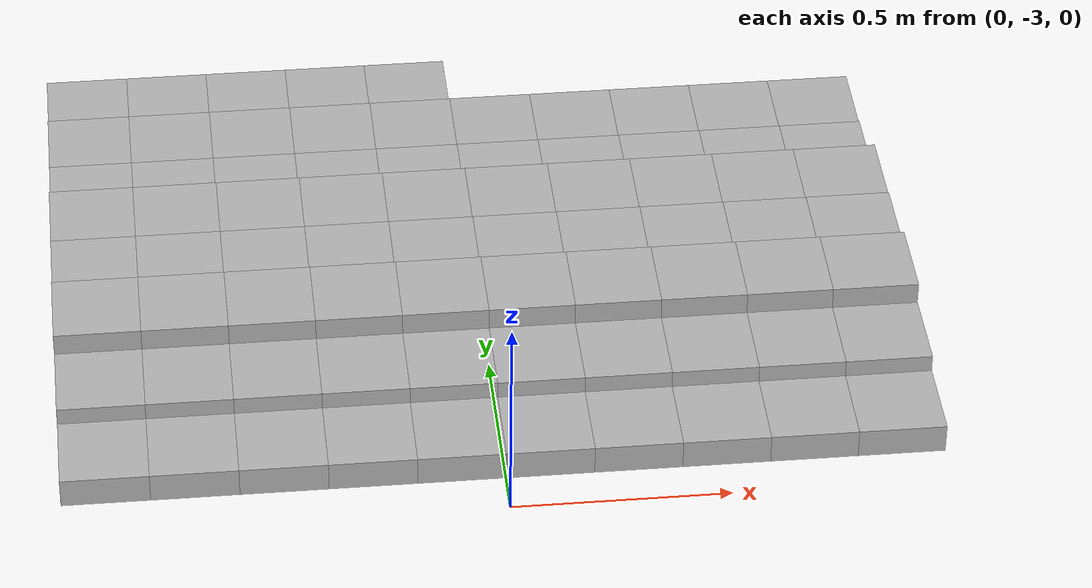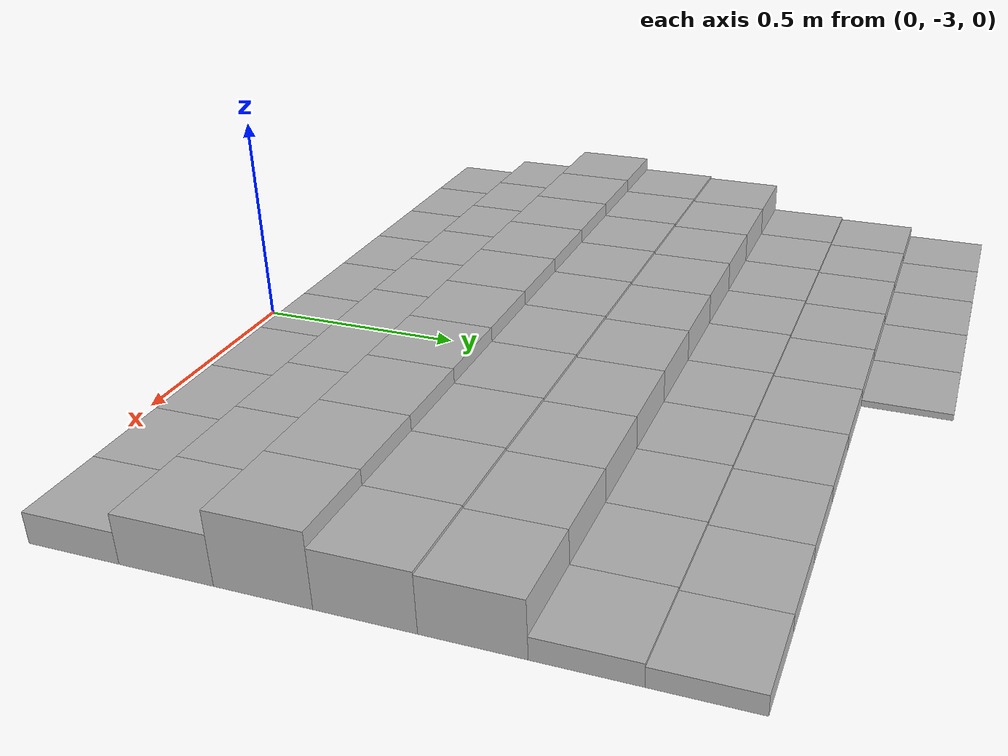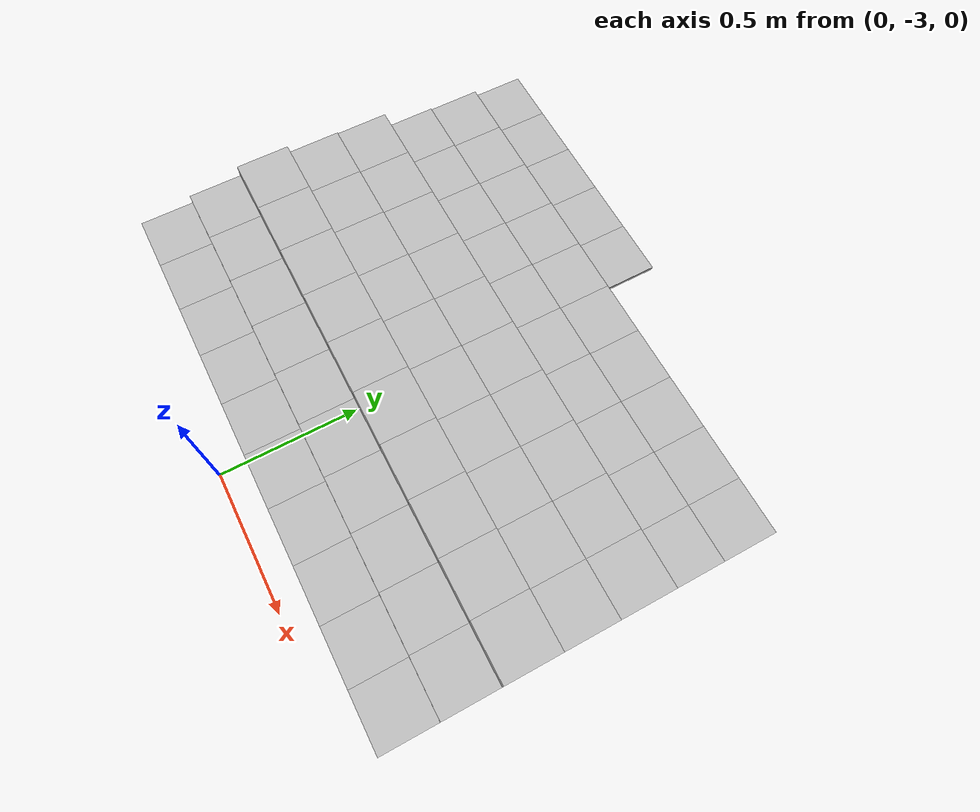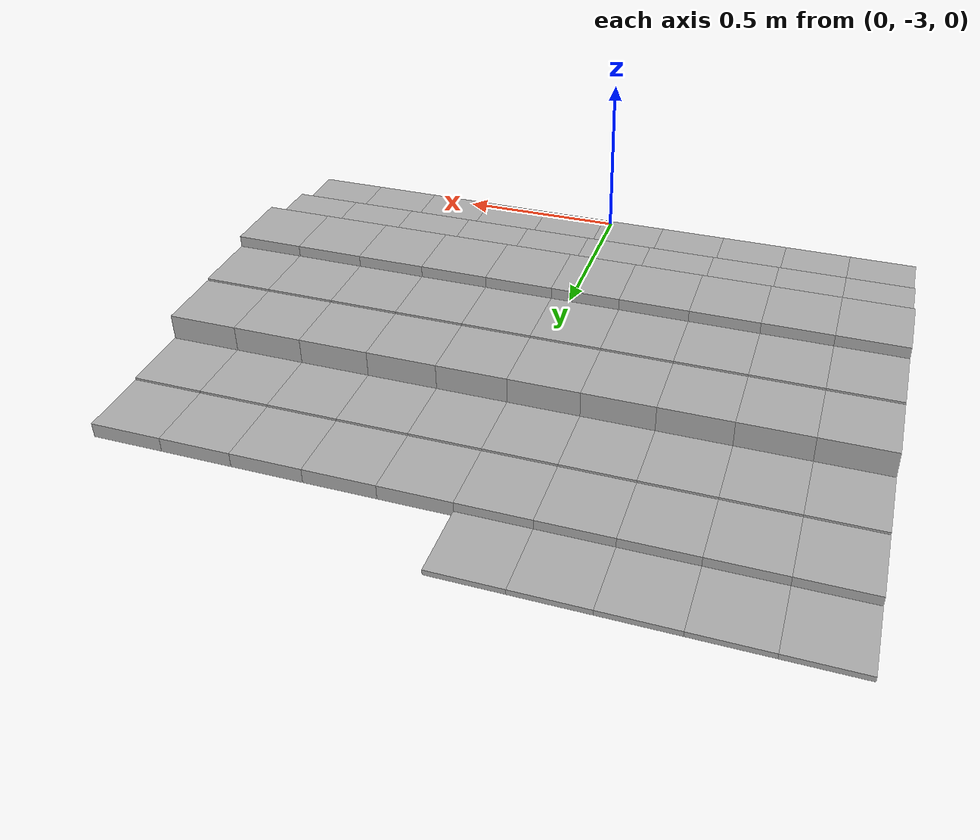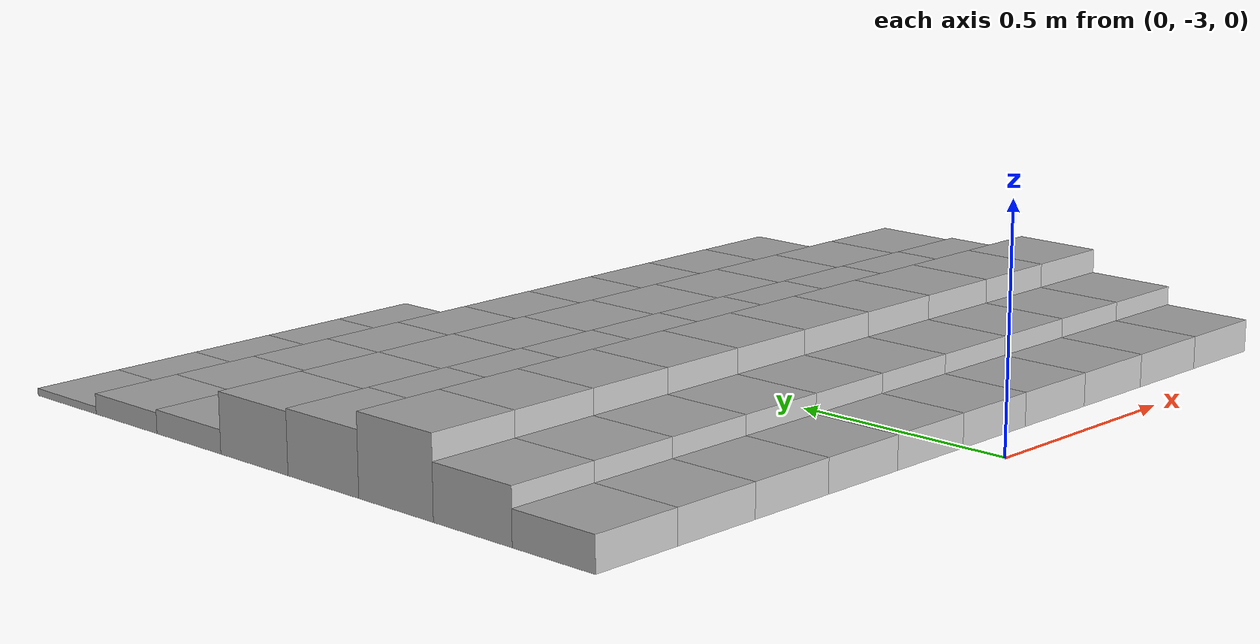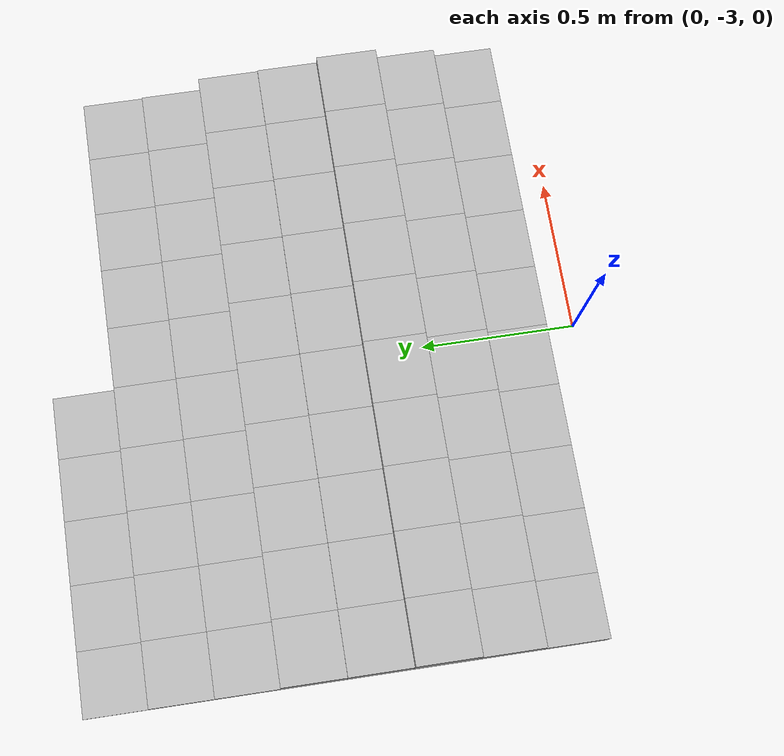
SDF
<sdf version="1.6">
 <model name="Terrain">
  <static>true</static>
  <link name="box_7_0">
   <pose>-0.9 -1.4 0.0075755849345 0 0 0</pose>
   <inertial>
    <mass>1.0</mass>
    <inertia><ixx>0.0</ixx><ixy>0.0</ixy><ixz>0.0</ixz><iyy>0.0</iyy><iyz>0.0</iyz><izz>0.0</izz></inertia>
   </inertial>
   <collision name="collision"><geometry><box><size>0.2 0.2 0.015151169869</size></box></geometry></collision>
   <visual name="visual"><geometry><box><size>0.2 0.2 0.015151169869</size></box></geometry></visual>
  </link>
  <link name="box_7_1">
   <pose>-0.7 -1.4 0.0075755849345 0 0 0</pose>
   <inertial>
    <mass>1.0</mass>
    <inertia><ixx>0.0</ixx><ixy>0.0</ixy><ixz>0.0</ixz><iyy>0.0</iyy><iyz>0.0</iyz><izz>0.0</izz></inertia>
   </inertial>
   <collision name="collision"><geometry><box><size>0.2 0.2 0.015151169869</size></box></geometry></collision>
   <visual name="visual"><geometry><box><size>0.2 0.2 0.015151169869</size></box></geometry></visual>
  </link>
  <link name="box_7_2">
   <pose>-0.5 -1.4 0.0075755849345 0 0 0</pose>
   <inertial>
    <mass>1.0</mass>
    <inertia><ixx>0.0</ixx><ixy>0.0</ixy><ixz>0.0</ixz><iyy>0.0</iyy><iyz>0.0</iyz><izz>0.0</izz></inertia>
   </inertial>
   <collision name="collision"><geometry><box><size>0.2 0.2 0.015151169869</size></box></geometry></collision>
   <visual name="visual"><geometry><box><size>0.2 0.2 0.015151169869</size></box></geometry></visual>
  </link>
  <link name="box_7_3">
   <pose>-0.3 -1.4 0.0075755849345 0 0 0</pose>
   <inertial>
    <mass>1.0</mass>
    <inertia><ixx>0.0</ixx><ixy>0.0</ixy><ixz>0.0</ixz><iyy>0.0</iyy><iyz>0.0</iyz><izz>0.0</izz></inertia>
   </inertial>
   <collision name="collision"><geometry><box><size>0.2 0.2 0.015151169869</size></box></geometry></collision>
   <visual name="visual"><geometry><box><size>0.2 0.2 0.015151169869</size></box></geometry></visual>
  </link>
  <link name="box_7_4">
   <pose>-0.1 -1.4 0.0075755849345 0 0 0</pose>
   <inertial>
    <mass>1.0</mass>
    <inertia><ixx>0.0</ixx><ixy>0.0</ixy><ixz>0.0</ixz><iyy>0.0</iyy><iyz>0.0</iyz><izz>0.0</izz></inertia>
   </inertial>
   <collision name="collision"><geometry><box><size>0.2 0.2 0.015151169869</size></box></geometry></collision>
   <visual name="visual"><geometry><box><size>0.2 0.2 0.015151169869</size></box></geometry></visual>
  </link>
  <link name="box_8_0">
   <pose>-0.9 -1.6 0.0211864863341 0 0 0</pose>
   <inertial>
    <mass>1.0</mass>
    <inertia><ixx>0.0</ixx><ixy>0.0</ixy><ixz>0.0</ixz><iyy>0.0</iyy><iyz>0.0</iyz><izz>0.0</izz></inertia>
   </inertial>
   <collision name="collision"><geometry><box><size>0.2 0.2 0.0423729726682</size></box></geometry></collision>
   <visual name="visual"><geometry><box><size>0.2 0.2 0.0423729726682</size></box></geometry></visual>
  </link>
  <link name="box_8_1">
   <pose>-0.7 -1.6 0.0211864863341 0 0 0</pose>
   <inertial>
    <mass>1.0</mass>
    <inertia><ixx>0.0</ixx><ixy>0.0</ixy><ixz>0.0</ixz><iyy>0.0</iyy><iyz>0.0</iyz><izz>0.0</izz></inertia>
   </inertial>
   <collision name="collision"><geometry><box><size>0.2 0.2 0.0423729726682</size></box></geometry></collision>
   <visual name="visual"><geometry><box><size>0.2 0.2 0.0423729726682</size></box></geometry></visual>
  </link>
  <link name="box_8_2">
   <pose>-0.5 -1.6 0.0211864863341 0 0 0</pose>
   <inertial>
    <mass>1.0</mass>
    <inertia><ixx>0.0</ixx><ixy>0.0</ixy><ixz>0.0</ixz><iyy>0.0</iyy><iyz>0.0</iyz><izz>0.0</izz></inertia>
   </inertial>
   <collision name="collision"><geometry><box><size>0.2 0.2 0.0423729726682</size></box></geometry></collision>
   <visual name="visual"><geometry><box><size>0.2 0.2 0.0423729726682</size></box></geometry></visual>
  </link>
  <link name="box_8_3">
   <pose>-0.3 -1.6 0.0211864863341 0 0 0</pose>
   <inertial>
    <mass>1.0</mass>
    <inertia><ixx>0.0</ixx><ixy>0.0</ixy><ixz>0.0</ixz><iyy>0.0</iyy><iyz>0.0</iyz><izz>0.0</izz></inertia>
   </inertial>
   <collision name="collision"><geometry><box><size>0.2 0.2 0.0423729726682</size></box></geometry></collision>
   <visual name="visual"><geometry><box><size>0.2 0.2 0.0423729726682</size></box></geometry></visual>
  </link>
  <link name="box_8_4">
   <pose>-0.1 -1.6 0.0211864863341 0 0 0</pose>
   <inertial>
    <mass>1.0</mass>
    <inertia><ixx>0.0</ixx><ixy>0.0</ixy><ixz>0.0</ixz><iyy>0.0</iyy><iyz>0.0</iyz><izz>0.0</izz></inertia>
   </inertial>
   <collision name="collision"><geometry><box><size>0.2 0.2 0.0423729726682</size></box></geometry></collision>
   <visual name="visual"><geometry><box><size>0.2 0.2 0.0423729726682</size></box></geometry></visual>
  </link>
  <link name="box_8_5">
   <pose>0.1 -1.6 0.0211864863341 0 0 0</pose>
   <inertial>
    <mass>1.0</mass>
    <inertia><ixx>0.0</ixx><ixy>0.0</ixy><ixz>0.0</ixz><iyy>0.0</iyy><iyz>0.0</iyz><izz>0.0</izz></inertia>
   </inertial>
   <collision name="collision"><geometry><box><size>0.2 0.2 0.0423729726682</size></box></geometry></collision>
   <visual name="visual"><geometry><box><size>0.2 0.2 0.0423729726682</size></box></geometry></visual>
  </link>
  <link name="box_8_6">
   <pose>0.3 -1.6 0.0211864863341 0 0 0</pose>
   <inertial>
    <mass>1.0</mass>
    <inertia><ixx>0.0</ixx><ixy>0.0</ixy><ixz>0.0</ixz><iyy>0.0</iyy><iyz>0.0</iyz><izz>0.0</izz></inertia>
   </inertial>
   <collision name="collision"><geometry><box><size>0.2 0.2 0.0423729726682</size></box></geometry></collision>
   <visual name="visual"><geometry><box><size>0.2 0.2 0.0423729726682</size></box></geometry></visual>
  </link>
  <link name="box_8_7">
   <pose>0.5 -1.6 0.0211864863341 0 0 0</pose>
   <inertial>
    <mass>1.0</mass>
    <inertia><ixx>0.0</ixx><ixy>0.0</ixy><ixz>0.0</ixz><iyy>0.0</iyy><iyz>0.0</iyz><izz>0.0</izz></inertia>
   </inertial>
   <collision name="collision"><geometry><box><size>0.2 0.2 0.0423729726682</size></box></geometry></collision>
   <visual name="visual"><geometry><box><size>0.2 0.2 0.0423729726682</size></box></geometry></visual>
  </link>
  <link name="box_8_8">
   <pose>0.7 -1.6 0.0211864863341 0 0 0</pose>
   <inertial>
    <mass>1.0</mass>
    <inertia><ixx>0.0</ixx><ixy>0.0</ixy><ixz>0.0</ixz><iyy>0.0</iyy><iyz>0.0</iyz><izz>0.0</izz></inertia>
   </inertial>
   <collision name="collision"><geometry><box><size>0.2 0.2 0.0423729726682</size></box></geometry></collision>
   <visual name="visual"><geometry><box><size>0.2 0.2 0.0423729726682</size></box></geometry></visual>
  </link>
  <link name="box_8_9">
   <pose>0.9 -1.6 0.0211864863341 0 0 0</pose>
   <inertial>
    <mass>1.0</mass>
    <inertia><ixx>0.0</ixx><ixy>0.0</ixy><ixz>0.0</ixz><iyy>0.0</iyy><iyz>0.0</iyz><izz>0.0</izz></inertia>
   </inertial>
   <collision name="collision"><geometry><box><size>0.2 0.2 0.0423729726682</size></box></geometry></collision>
   <visual name="visual"><geometry><box><size>0.2 0.2 0.0423729726682</size></box></geometry></visual>
  </link>
  <link name="box_9_0">
   <pose>-0.9 -1.8 0.0242864443625 0 0 0</pose>
   <inertial>
    <mass>1.0</mass>
    <inertia><ixx>0.0</ixx><ixy>0.0</ixy><ixz>0.0</ixz><iyy>0.0</iyy><iyz>0.0</iyz><izz>0.0</izz></inertia>
   </inertial>
   <collision name="collision"><geometry><box><size>0.2 0.2 0.048572888725</size></box></geometry></collision>
   <visual name="visual"><geometry><box><size>0.2 0.2 0.048572888725</size></box></geometry></visual>
  </link>
  <link name="box_9_1">
   <pose>-0.7 -1.8 0.0242864443625 0 0 0</pose>
   <inertial>
    <mass>1.0</mass>
    <inertia><ixx>0.0</ixx><ixy>0.0</ixy><ixz>0.0</ixz><iyy>0.0</iyy><iyz>0.0</iyz><izz>0.0</izz></inertia>
   </inertial>
   <collision name="collision"><geometry><box><size>0.2 0.2 0.048572888725</size></box></geometry></collision>
   <visual name="visual"><geometry><box><size>0.2 0.2 0.048572888725</size></box></geometry></visual>
  </link>
  <link name="box_9_2">
   <pose>-0.5 -1.8 0.0242864443625 0 0 0</pose>
   <inertial>
    <mass>1.0</mass>
    <inertia><ixx>0.0</ixx><ixy>0.0</ixy><ixz>0.0</ixz><iyy>0.0</iyy><iyz>0.0</iyz><izz>0.0</izz></inertia>
   </inertial>
   <collision name="collision"><geometry><box><size>0.2 0.2 0.048572888725</size></box></geometry></collision>
   <visual name="visual"><geometry><box><size>0.2 0.2 0.048572888725</size></box></geometry></visual>
  </link>
  <link name="box_9_3">
   <pose>-0.3 -1.8 0.0242864443625 0 0 0</pose>
   <inertial>
    <mass>1.0</mass>
    <inertia><ixx>0.0</ixx><ixy>0.0</ixy><ixz>0.0</ixz><iyy>0.0</iyy><iyz>0.0</iyz><izz>0.0</izz></inertia>
   </inertial>
   <collision name="collision"><geometry><box><size>0.2 0.2 0.048572888725</size></box></geometry></collision>
   <visual name="visual"><geometry><box><size>0.2 0.2 0.048572888725</size></box></geometry></visual>
  </link>
  <link name="box_9_4">
   <pose>-0.1 -1.8 0.0242864443625 0 0 0</pose>
   <inertial>
    <mass>1.0</mass>
    <inertia><ixx>0.0</ixx><ixy>0.0</ixy><ixz>0.0</ixz><iyy>0.0</iyy><iyz>0.0</iyz><izz>0.0</izz></inertia>
   </inertial>
   <collision name="collision"><geometry><box><size>0.2 0.2 0.048572888725</size></box></geometry></collision>
   <visual name="visual"><geometry><box><size>0.2 0.2 0.048572888725</size></box></geometry></visual>
  </link>
  <link name="box_9_5">
   <pose>0.1 -1.8 0.0242864443625 0 0 0</pose>
   <inertial>
    <mass>1.0</mass>
    <inertia><ixx>0.0</ixx><ixy>0.0</ixy><ixz>0.0</ixz><iyy>0.0</iyy><iyz>0.0</iyz><izz>0.0</izz></inertia>
   </inertial>
   <collision name="collision"><geometry><box><size>0.2 0.2 0.048572888725</size></box></geometry></collision>
   <visual name="visual"><geometry><box><size>0.2 0.2 0.048572888725</size></box></geometry></visual>
  </link>
  <link name="box_9_6">
   <pose>0.3 -1.8 0.0242864443625 0 0 0</pose>
   <inertial>
    <mass>1.0</mass>
    <inertia><ixx>0.0</ixx><ixy>0.0</ixy><ixz>0.0</ixz><iyy>0.0</iyy><iyz>0.0</iyz><izz>0.0</izz></inertia>
   </inertial>
   <collision name="collision"><geometry><box><size>0.2 0.2 0.048572888725</size></box></geometry></collision>
   <visual name="visual"><geometry><box><size>0.2 0.2 0.048572888725</size></box></geometry></visual>
  </link>
  <link name="box_9_7">
   <pose>0.5 -1.8 0.0242864443625 0 0 0</pose>
   <inertial>
    <mass>1.0</mass>
    <inertia><ixx>0.0</ixx><ixy>0.0</ixy><ixz>0.0</ixz><iyy>0.0</iyy><iyz>0.0</iyz><izz>0.0</izz></inertia>
   </inertial>
   <collision name="collision"><geometry><box><size>0.2 0.2 0.048572888725</size></box></geometry></collision>
   <visual name="visual"><geometry><box><size>0.2 0.2 0.048572888725</size></box></geometry></visual>
  </link>
  <link name="box_9_8">
   <pose>0.7 -1.8 0.0242864443625 0 0 0</pose>
   <inertial>
    <mass>1.0</mass>
    <inertia><ixx>0.0</ixx><ixy>0.0</ixy><ixz>0.0</ixz><iyy>0.0</iyy><iyz>0.0</iyz><izz>0.0</izz></inertia>
   </inertial>
   <collision name="collision"><geometry><box><size>0.2 0.2 0.048572888725</size></box></geometry></collision>
   <visual name="visual"><geometry><box><size>0.2 0.2 0.048572888725</size></box></geometry></visual>
  </link>
  <link name="box_9_9">
   <pose>0.9 -1.8 0.0242864443625 0 0 0</pose>
   <inertial>
    <mass>1.0</mass>
    <inertia><ixx>0.0</ixx><ixy>0.0</ixy><ixz>0.0</ixz><iyy>0.0</iyy><iyz>0.0</iyz><izz>0.0</izz></inertia>
   </inertial>
   <collision name="collision"><geometry><box><size>0.2 0.2 0.048572888725</size></box></geometry></collision>
   <visual name="visual"><geometry><box><size>0.2 0.2 0.048572888725</size></box></geometry></visual>
  </link>
  <link name="box_10_0">
   <pose>-0.9 -2.0 0.0619349079104 0 0 0</pose>
   <inertial>
    <mass>1.0</mass>
    <inertia><ixx>0.0</ixx><ixy>0.0</ixy><ixz>0.0</ixz><iyy>0.0</iyy><iyz>0.0</iyz><izz>0.0</izz></inertia>
   </inertial>
   <collision name="collision"><geometry><box><size>0.2 0.2 0.123869815821</size></box></geometry></collision>
   <visual name="visual"><geometry><box><size>0.2 0.2 0.123869815821</size></box></geometry></visual>
  </link>
  <link name="box_10_1">
   <pose>-0.7 -2.0 0.0619349079104 0 0 0</pose>
   <inertial>
    <mass>1.0</mass>
    <inertia><ixx>0.0</ixx><ixy>0.0</ixy><ixz>0.0</ixz><iyy>0.0</iyy><iyz>0.0</iyz><izz>0.0</izz></inertia>
   </inertial>
   <collision name="collision"><geometry><box><size>0.2 0.2 0.123869815821</size></box></geometry></collision>
   <visual name="visual"><geometry><box><size>0.2 0.2 0.123869815821</size></box></geometry></visual>
  </link>
  <link name="box_10_2">
   <pose>-0.5 -2.0 0.0619349079104 0 0 0</pose>
   <inertial>
    <mass>1.0</mass>
    <inertia><ixx>0.0</ixx><ixy>0.0</ixy><ixz>0.0</ixz><iyy>0.0</iyy><iyz>0.0</iyz><izz>0.0</izz></inertia>
   </inertial>
   <collision name="collision"><geometry><box><size>0.2 0.2 0.123869815821</size></box></geometry></collision>
   <visual name="visual"><geometry><box><size>0.2 0.2 0.123869815821</size></box></geometry></visual>
  </link>
  <link name="box_10_3">
   <pose>-0.3 -2.0 0.0619349079104 0 0 0</pose>
   <inertial>
    <mass>1.0</mass>
    <inertia><ixx>0.0</ixx><ixy>0.0</ixy><ixz>0.0</ixz><iyy>0.0</iyy><iyz>0.0</iyz><izz>0.0</izz></inertia>
   </inertial>
   <collision name="collision"><geometry><box><size>0.2 0.2 0.123869815821</size></box></geometry></collision>
   <visual name="visual"><geometry><box><size>0.2 0.2 0.123869815821</size></box></geometry></visual>
  </link>
  <link name="box_10_4">
   <pose>-0.1 -2.0 0.0619349079104 0 0 0</pose>
   <inertial>
    <mass>1.0</mass>
    <inertia><ixx>0.0</ixx><ixy>0.0</ixy><ixz>0.0</ixz><iyy>0.0</iyy><iyz>0.0</iyz><izz>0.0</izz></inertia>
   </inertial>
   <collision name="collision"><geometry><box><size>0.2 0.2 0.123869815821</size></box></geometry></collision>
   <visual name="visual"><geometry><box><size>0.2 0.2 0.123869815821</size></box></geometry></visual>
  </link>
  <link name="box_10_5">
   <pose>0.1 -2.0 0.0619349079104 0 0 0</pose>
   <inertial>
    <mass>1.0</mass>
    <inertia><ixx>0.0</ixx><ixy>0.0</ixy><ixz>0.0</ixz><iyy>0.0</iyy><iyz>0.0</iyz><izz>0.0</izz></inertia>
   </inertial>
   <collision name="collision"><geometry><box><size>0.2 0.2 0.123869815821</size></box></geometry></collision>
   <visual name="visual"><geometry><box><size>0.2 0.2 0.123869815821</size></box></geometry></visual>
  </link>
  <link name="box_10_6">
   <pose>0.3 -2.0 0.0619349079104 0 0 0</pose>
   <inertial>
    <mass>1.0</mass>
    <inertia><ixx>0.0</ixx><ixy>0.0</ixy><ixz>0.0</ixz><iyy>0.0</iyy><iyz>0.0</iyz><izz>0.0</izz></inertia>
   </inertial>
   <collision name="collision"><geometry><box><size>0.2 0.2 0.123869815821</size></box></geometry></collision>
   <visual name="visual"><geometry><box><size>0.2 0.2 0.123869815821</size></box></geometry></visual>
  </link>
  <link name="box_10_7">
   <pose>0.5 -2.0 0.0619349079104 0 0 0</pose>
   <inertial>
    <mass>1.0</mass>
    <inertia><ixx>0.0</ixx><ixy>0.0</ixy><ixz>0.0</ixz><iyy>0.0</iyy><iyz>0.0</iyz><izz>0.0</izz></inertia>
   </inertial>
   <collision name="collision"><geometry><box><size>0.2 0.2 0.123869815821</size></box></geometry></collision>
   <visual name="visual"><geometry><box><size>0.2 0.2 0.123869815821</size></box></geometry></visual>
  </link>
  <link name="box_10_8">
   <pose>0.7 -2.0 0.0619349079104 0 0 0</pose>
   <inertial>
    <mass>1.0</mass>
    <inertia><ixx>0.0</ixx><ixy>0.0</ixy><ixz>0.0</ixz><iyy>0.0</iyy><iyz>0.0</iyz><izz>0.0</izz></inertia>
   </inertial>
   <collision name="collision"><geometry><box><size>0.2 0.2 0.123869815821</size></box></geometry></collision>
   <visual name="visual"><geometry><box><size>0.2 0.2 0.123869815821</size></box></geometry></visual>
  </link>
  <link name="box_10_9">
   <pose>0.9 -2.0 0.0619349079104 0 0 0</pose>
   <inertial>
    <mass>1.0</mass>
    <inertia><ixx>0.0</ixx><ixy>0.0</ixy><ixz>0.0</ixz><iyy>0.0</iyy><iyz>0.0</iyz><izz>0.0</izz></inertia>
   </inertial>
   <collision name="collision"><geometry><box><size>0.2 0.2 0.123869815821</size></box></geometry></collision>
   <visual name="visual"><geometry><box><size>0.2 0.2 0.123869815821</size></box></geometry></visual>
  </link>
  <link name="box_11_0">
   <pose>-0.9 -2.2 0.0648785991805 0 0 0</pose>
   <inertial>
    <mass>1.0</mass>
    <inertia><ixx>0.0</ixx><ixy>0.0</ixy><ixz>0.0</ixz><iyy>0.0</iyy><iyz>0.0</iyz><izz>0.0</izz></inertia>
   </inertial>
   <collision name="collision"><geometry><box><size>0.2 0.2 0.129757198361</size></box></geometry></collision>
   <visual name="visual"><geometry><box><size>0.2 0.2 0.129757198361</size></box></geometry></visual>
  </link>
  <link name="box_11_1">
   <pose>-0.7 -2.2 0.0648785991805 0 0 0</pose>
   <inertial>
    <mass>1.0</mass>
    <inertia><ixx>0.0</ixx><ixy>0.0</ixy><ixz>0.0</ixz><iyy>0.0</iyy><iyz>0.0</iyz><izz>0.0</izz></inertia>
   </inertial>
   <collision name="collision"><geometry><box><size>0.2 0.2 0.129757198361</size></box></geometry></collision>
   <visual name="visual"><geometry><box><size>0.2 0.2 0.129757198361</size></box></geometry></visual>
  </link>
  <link name="box_11_2">
   <pose>-0.5 -2.2 0.0648785991805 0 0 0</pose>
   <inertial>
    <mass>1.0</mass>
    <inertia><ixx>0.0</ixx><ixy>0.0</ixy><ixz>0.0</ixz><iyy>0.0</iyy><iyz>0.0</iyz><izz>0.0</izz></inertia>
   </inertial>
   <collision name="collision"><geometry><box><size>0.2 0.2 0.129757198361</size></box></geometry></collision>
   <visual name="visual"><geometry><box><size>0.2 0.2 0.129757198361</size></box></geometry></visual>
  </link>
  <link name="box_11_3">
   <pose>-0.3 -2.2 0.0648785991805 0 0 0</pose>
   <inertial>
    <mass>1.0</mass>
    <inertia><ixx>0.0</ixx><ixy>0.0</ixy><ixz>0.0</ixz><iyy>0.0</iyy><iyz>0.0</iyz><izz>0.0</izz></inertia>
   </inertial>
   <collision name="collision"><geometry><box><size>0.2 0.2 0.129757198361</size></box></geometry></collision>
   <visual name="visual"><geometry><box><size>0.2 0.2 0.129757198361</size></box></geometry></visual>
  </link>
  <link name="box_11_4">
   <pose>-0.1 -2.2 0.0648785991805 0 0 0</pose>
   <inertial>
    <mass>1.0</mass>
    <inertia><ixx>0.0</ixx><ixy>0.0</ixy><ixz>0.0</ixz><iyy>0.0</iyy><iyz>0.0</iyz><izz>0.0</izz></inertia>
   </inertial>
   <collision name="collision"><geometry><box><size>0.2 0.2 0.129757198361</size></box></geometry></collision>
   <visual name="visual"><geometry><box><size>0.2 0.2 0.129757198361</size></box></geometry></visual>
  </link>
  <link name="box_11_5">
   <pose>0.1 -2.2 0.0648785991805 0 0 0</pose>
   <inertial>
    <mass>1.0</mass>
    <inertia><ixx>0.0</ixx><ixy>0.0</ixy><ixz>0.0</ixz><iyy>0.0</iyy><iyz>0.0</iyz><izz>0.0</izz></inertia>
   </inertial>
   <collision name="collision"><geometry><box><size>0.2 0.2 0.129757198361</size></box></geometry></collision>
   <visual name="visual"><geometry><box><size>0.2 0.2 0.129757198361</size></box></geometry></visual>
  </link>
  <link name="box_11_6">
   <pose>0.3 -2.2 0.0648785991805 0 0 0</pose>
   <inertial>
    <mass>1.0</mass>
    <inertia><ixx>0.0</ixx><ixy>0.0</ixy><ixz>0.0</ixz><iyy>0.0</iyy><iyz>0.0</iyz><izz>0.0</izz></inertia>
   </inertial>
   <collision name="collision"><geometry><box><size>0.2 0.2 0.129757198361</size></box></geometry></collision>
   <visual name="visual"><geometry><box><size>0.2 0.2 0.129757198361</size></box></geometry></visual>
  </link>
  <link name="box_11_7">
   <pose>0.5 -2.2 0.0648785991805 0 0 0</pose>
   <inertial>
    <mass>1.0</mass>
    <inertia><ixx>0.0</ixx><ixy>0.0</ixy><ixz>0.0</ixz><iyy>0.0</iyy><iyz>0.0</iyz><izz>0.0</izz></inertia>
   </inertial>
   <collision name="collision"><geometry><box><size>0.2 0.2 0.129757198361</size></box></geometry></collision>
   <visual name="visual"><geometry><box><size>0.2 0.2 0.129757198361</size></box></geometry></visual>
  </link>
  <link name="box_11_8">
   <pose>0.7 -2.2 0.0648785991805 0 0 0</pose>
   <inertial>
    <mass>1.0</mass>
    <inertia><ixx>0.0</ixx><ixy>0.0</ixy><ixz>0.0</ixz><iyy>0.0</iyy><iyz>0.0</iyz><izz>0.0</izz></inertia>
   </inertial>
   <collision name="collision"><geometry><box><size>0.2 0.2 0.129757198361</size></box></geometry></collision>
   <visual name="visual"><geometry><box><size>0.2 0.2 0.129757198361</size></box></geometry></visual>
  </link>
  <link name="box_11_9">
   <pose>0.9 -2.2 0.0648785991805 0 0 0</pose>
   <inertial>
    <mass>1.0</mass>
    <inertia><ixx>0.0</ixx><ixy>0.0</ixy><ixz>0.0</ixz><iyy>0.0</iyy><iyz>0.0</iyz><izz>0.0</izz></inertia>
   </inertial>
   <collision name="collision"><geometry><box><size>0.2 0.2 0.129757198361</size></box></geometry></collision>
   <visual name="visual"><geometry><box><size>0.2 0.2 0.129757198361</size></box></geometry></visual>
  </link>
  <link name="box_12_0">
   <pose>-0.9 -2.4 0.081911307772 0 0 0</pose>
   <inertial>
    <mass>1.0</mass>
    <inertia><ixx>0.0</ixx><ixy>0.0</ixy><ixz>0.0</ixz><iyy>0.0</iyy><iyz>0.0</iyz><izz>0.0</izz></inertia>
   </inertial>
   <collision name="collision"><geometry><box><size>0.2 0.2 0.163822615544</size></box></geometry></collision>
   <visual name="visual"><geometry><box><size>0.2 0.2 0.163822615544</size></box></geometry></visual>
  </link>
  <link name="box_12_1">
   <pose>-0.7 -2.4 0.081911307772 0 0 0</pose>
   <inertial>
    <mass>1.0</mass>
    <inertia><ixx>0.0</ixx><ixy>0.0</ixy><ixz>0.0</ixz><iyy>0.0</iyy><iyz>0.0</iyz><izz>0.0</izz></inertia>
   </inertial>
   <collision name="collision"><geometry><box><size>0.2 0.2 0.163822615544</size></box></geometry></collision>
   <visual name="visual"><geometry><box><size>0.2 0.2 0.163822615544</size></box></geometry></visual>
  </link>
  <link name="box_12_2">
   <pose>-0.5 -2.4 0.081911307772 0 0 0</pose>
   <inertial>
    <mass>1.0</mass>
    <inertia><ixx>0.0</ixx><ixy>0.0</ixy><ixz>0.0</ixz><iyy>0.0</iyy><iyz>0.0</iyz><izz>0.0</izz></inertia>
   </inertial>
   <collision name="collision"><geometry><box><size>0.2 0.2 0.163822615544</size></box></geometry></collision>
   <visual name="visual"><geometry><box><size>0.2 0.2 0.163822615544</size></box></geometry></visual>
  </link>
  <link name="box_12_3">
   <pose>-0.3 -2.4 0.081911307772 0 0 0</pose>
   <inertial>
    <mass>1.0</mass>
    <inertia><ixx>0.0</ixx><ixy>0.0</ixy><ixz>0.0</ixz><iyy>0.0</iyy><iyz>0.0</iyz><izz>0.0</izz></inertia>
   </inertial>
   <collision name="collision"><geometry><box><size>0.2 0.2 0.163822615544</size></box></geometry></collision>
   <visual name="visual"><geometry><box><size>0.2 0.2 0.163822615544</size></box></geometry></visual>
  </link>
  <link name="box_12_4">
   <pose>-0.1 -2.4 0.081911307772 0 0 0</pose>
   <inertial>
    <mass>1.0</mass>
    <inertia><ixx>0.0</ixx><ixy>0.0</ixy><ixz>0.0</ixz><iyy>0.0</iyy><iyz>0.0</iyz><izz>0.0</izz></inertia>
   </inertial>
   <collision name="collision"><geometry><box><size>0.2 0.2 0.163822615544</size></box></geometry></collision>
   <visual name="visual"><geometry><box><size>0.2 0.2 0.163822615544</size></box></geometry></visual>
  </link>
  <link name="box_12_5">
   <pose>0.1 -2.4 0.081911307772 0 0 0</pose>
   <inertial>
    <mass>1.0</mass>
    <inertia><ixx>0.0</ixx><ixy>0.0</ixy><ixz>0.0</ixz><iyy>0.0</iyy><iyz>0.0</iyz><izz>0.0</izz></inertia>
   </inertial>
   <collision name="collision"><geometry><box><size>0.2 0.2 0.163822615544</size></box></geometry></collision>
   <visual name="visual"><geometry><box><size>0.2 0.2 0.163822615544</size></box></geometry></visual>
  </link>
  <link name="box_12_6">
   <pose>0.3 -2.4 0.081911307772 0 0 0</pose>
   <inertial>
    <mass>1.0</mass>
    <inertia><ixx>0.0</ixx><ixy>0.0</ixy><ixz>0.0</ixz><iyy>0.0</iyy><iyz>0.0</iyz><izz>0.0</izz></inertia>
   </inertial>
   <collision name="collision"><geometry><box><size>0.2 0.2 0.163822615544</size></box></geometry></collision>
   <visual name="visual"><geometry><box><size>0.2 0.2 0.163822615544</size></box></geometry></visual>
  </link>
  <link name="box_12_7">
   <pose>0.5 -2.4 0.081911307772 0 0 0</pose>
   <inertial>
    <mass>1.0</mass>
    <inertia><ixx>0.0</ixx><ixy>0.0</ixy><ixz>0.0</ixz><iyy>0.0</iyy><iyz>0.0</iyz><izz>0.0</izz></inertia>
   </inertial>
   <collision name="collision"><geometry><box><size>0.2 0.2 0.163822615544</size></box></geometry></collision>
   <visual name="visual"><geometry><box><size>0.2 0.2 0.163822615544</size></box></geometry></visual>
  </link>
  <link name="box_12_8">
   <pose>0.7 -2.4 0.081911307772 0 0 0</pose>
   <inertial>
    <mass>1.0</mass>
    <inertia><ixx>0.0</ixx><ixy>0.0</ixy><ixz>0.0</ixz><iyy>0.0</iyy><iyz>0.0</iyz><izz>0.0</izz></inertia>
   </inertial>
   <collision name="collision"><geometry><box><size>0.2 0.2 0.163822615544</size></box></geometry></collision>
   <visual name="visual"><geometry><box><size>0.2 0.2 0.163822615544</size></box></geometry></visual>
  </link>
  <link name="box_12_9">
   <pose>0.9 -2.4 0.081911307772 0 0 0</pose>
   <inertial>
    <mass>1.0</mass>
    <inertia><ixx>0.0</ixx><ixy>0.0</ixy><ixz>0.0</ixz><iyy>0.0</iyy><iyz>0.0</iyz><izz>0.0</izz></inertia>
   </inertial>
   <collision name="collision"><geometry><box><size>0.2 0.2 0.163822615544</size></box></geometry></collision>
   <visual name="visual"><geometry><box><size>0.2 0.2 0.163822615544</size></box></geometry></visual>
  </link>
  <link name="box_13_0">
   <pose>-0.9 -2.6 0.0555968306439 0 0 0</pose>
   <inertial>
    <mass>1.0</mass>
    <inertia><ixx>0.0</ixx><ixy>0.0</ixy><ixz>0.0</ixz><iyy>0.0</iyy><iyz>0.0</iyz><izz>0.0</izz></inertia>
   </inertial>
   <collision name="collision"><geometry><box><size>0.2 0.2 0.111193661288</size></box></geometry></collision>
   <visual name="visual"><geometry><box><size>0.2 0.2 0.111193661288</size></box></geometry></visual>
  </link>
  <link name="box_13_1">
   <pose>-0.7 -2.6 0.0555968306439 0 0 0</pose>
   <inertial>
    <mass>1.0</mass>
    <inertia><ixx>0.0</ixx><ixy>0.0</ixy><ixz>0.0</ixz><iyy>0.0</iyy><iyz>0.0</iyz><izz>0.0</izz></inertia>
   </inertial>
   <collision name="collision"><geometry><box><size>0.2 0.2 0.111193661288</size></box></geometry></collision>
   <visual name="visual"><geometry><box><size>0.2 0.2 0.111193661288</size></box></geometry></visual>
  </link>
  <link name="box_13_2">
   <pose>-0.5 -2.6 0.0555968306439 0 0 0</pose>
   <inertial>
    <mass>1.0</mass>
    <inertia><ixx>0.0</ixx><ixy>0.0</ixy><ixz>0.0</ixz><iyy>0.0</iyy><iyz>0.0</iyz><izz>0.0</izz></inertia>
   </inertial>
   <collision name="collision"><geometry><box><size>0.2 0.2 0.111193661288</size></box></geometry></collision>
   <visual name="visual"><geometry><box><size>0.2 0.2 0.111193661288</size></box></geometry></visual>
  </link>
  <link name="box_13_3">
   <pose>-0.3 -2.6 0.0555968306439 0 0 0</pose>
   <inertial>
    <mass>1.0</mass>
    <inertia><ixx>0.0</ixx><ixy>0.0</ixy><ixz>0.0</ixz><iyy>0.0</iyy><iyz>0.0</iyz><izz>0.0</izz></inertia>
   </inertial>
   <collision name="collision"><geometry><box><size>0.2 0.2 0.111193661288</size></box></geometry></collision>
   <visual name="visual"><geometry><box><size>0.2 0.2 0.111193661288</size></box></geometry></visual>
  </link>
  <link name="box_13_4">
   <pose>-0.1 -2.6 0.0555968306439 0 0 0</pose>
   <inertial>
    <mass>1.0</mass>
    <inertia><ixx>0.0</ixx><ixy>0.0</ixy><ixz>0.0</ixz><iyy>0.0</iyy><iyz>0.0</iyz><izz>0.0</izz></inertia>
   </inertial>
   <collision name="collision"><geometry><box><size>0.2 0.2 0.111193661288</size></box></geometry></collision>
   <visual name="visual"><geometry><box><size>0.2 0.2 0.111193661288</size></box></geometry></visual>
  </link>
  <link name="box_13_5">
   <pose>0.1 -2.6 0.0555968306439 0 0 0</pose>
   <inertial>
    <mass>1.0</mass>
    <inertia><ixx>0.0</ixx><ixy>0.0</ixy><ixz>0.0</ixz><iyy>0.0</iyy><iyz>0.0</iyz><izz>0.0</izz></inertia>
   </inertial>
   <collision name="collision"><geometry><box><size>0.2 0.2 0.111193661288</size></box></geometry></collision>
   <visual name="visual"><geometry><box><size>0.2 0.2 0.111193661288</size></box></geometry></visual>
  </link>
  <link name="box_13_6">
   <pose>0.3 -2.6 0.0555968306439 0 0 0</pose>
   <inertial>
    <mass>1.0</mass>
    <inertia><ixx>0.0</ixx><ixy>0.0</ixy><ixz>0.0</ixz><iyy>0.0</iyy><iyz>0.0</iyz><izz>0.0</izz></inertia>
   </inertial>
   <collision name="collision"><geometry><box><size>0.2 0.2 0.111193661288</size></box></geometry></collision>
   <visual name="visual"><geometry><box><size>0.2 0.2 0.111193661288</size></box></geometry></visual>
  </link>
  <link name="box_13_7">
   <pose>0.5 -2.6 0.0555968306439 0 0 0</pose>
   <inertial>
    <mass>1.0</mass>
    <inertia><ixx>0.0</ixx><ixy>0.0</ixy><ixz>0.0</ixz><iyy>0.0</iyy><iyz>0.0</iyz><izz>0.0</izz></inertia>
   </inertial>
   <collision name="collision"><geometry><box><size>0.2 0.2 0.111193661288</size></box></geometry></collision>
   <visual name="visual"><geometry><box><size>0.2 0.2 0.111193661288</size></box></geometry></visual>
  </link>
  <link name="box_13_8">
   <pose>0.7 -2.6 0.0555968306439 0 0 0</pose>
   <inertial>
    <mass>1.0</mass>
    <inertia><ixx>0.0</ixx><ixy>0.0</ixy><ixz>0.0</ixz><iyy>0.0</iyy><iyz>0.0</iyz><izz>0.0</izz></inertia>
   </inertial>
   <collision name="collision"><geometry><box><size>0.2 0.2 0.111193661288</size></box></geometry></collision>
   <visual name="visual"><geometry><box><size>0.2 0.2 0.111193661288</size></box></geometry></visual>
  </link>
  <link name="box_13_9">
   <pose>0.9 -2.6 0.0555968306439 0 0 0</pose>
   <inertial>
    <mass>1.0</mass>
    <inertia><ixx>0.0</ixx><ixy>0.0</ixy><ixz>0.0</ixz><iyy>0.0</iyy><iyz>0.0</iyz><izz>0.0</izz></inertia>
   </inertial>
   <collision name="collision"><geometry><box><size>0.2 0.2 0.111193661288</size></box></geometry></collision>
   <visual name="visual"><geometry><box><size>0.2 0.2 0.111193661288</size></box></geometry></visual>
  </link>
  <link name="box_14_0">
   <pose>-0.9 -2.8 0.0350664820543 0 0 0</pose>
   <inertial>
    <mass>1.0</mass>
    <inertia><ixx>0.0</ixx><ixy>0.0</ixy><ixz>0.0</ixz><iyy>0.0</iyy><iyz>0.0</iyz><izz>0.0</izz></inertia>
   </inertial>
   <collision name="collision"><geometry><box><size>0.2 0.2 0.0701329641086</size></box></geometry></collision>
   <visual name="visual"><geometry><box><size>0.2 0.2 0.0701329641086</size></box></geometry></visual>
  </link>
  <link name="box_14_1">
   <pose>-0.7 -2.8 0.0350664820543 0 0 0</pose>
   <inertial>
    <mass>1.0</mass>
    <inertia><ixx>0.0</ixx><ixy>0.0</ixy><ixz>0.0</ixz><iyy>0.0</iyy><iyz>0.0</iyz><izz>0.0</izz></inertia>
   </inertial>
   <collision name="collision"><geometry><box><size>0.2 0.2 0.0701329641086</size></box></geometry></collision>
   <visual name="visual"><geometry><box><size>0.2 0.2 0.0701329641086</size></box></geometry></visual>
  </link>
  <link name="box_14_2">
   <pose>-0.5 -2.8 0.0350664820543 0 0 0</pose>
   <inertial>
    <mass>1.0</mass>
    <inertia><ixx>0.0</ixx><ixy>0.0</ixy><ixz>0.0</ixz><iyy>0.0</iyy><iyz>0.0</iyz><izz>0.0</izz></inertia>
   </inertial>
   <collision name="collision"><geometry><box><size>0.2 0.2 0.0701329641086</size></box></geometry></collision>
   <visual name="visual"><geometry><box><size>0.2 0.2 0.0701329641086</size></box></geometry></visual>
  </link>
  <link name="box_14_3">
   <pose>-0.3 -2.8 0.0350664820543 0 0 0</pose>
   <inertial>
    <mass>1.0</mass>
    <inertia><ixx>0.0</ixx><ixy>0.0</ixy><ixz>0.0</ixz><iyy>0.0</iyy><iyz>0.0</iyz><izz>0.0</izz></inertia>
   </inertial>
   <collision name="collision"><geometry><box><size>0.2 0.2 0.0701329641086</size></box></geometry></collision>
   <visual name="visual"><geometry><box><size>0.2 0.2 0.0701329641086</size></box></geometry></visual>
  </link>
  <link name="box_14_4">
   <pose>-0.1 -2.8 0.0350664820543 0 0 0</pose>
   <inertial>
    <mass>1.0</mass>
    <inertia><ixx>0.0</ixx><ixy>0.0</ixy><ixz>0.0</ixz><iyy>0.0</iyy><iyz>0.0</iyz><izz>0.0</izz></inertia>
   </inertial>
   <collision name="collision"><geometry><box><size>0.2 0.2 0.0701329641086</size></box></geometry></collision>
   <visual name="visual"><geometry><box><size>0.2 0.2 0.0701329641086</size></box></geometry></visual>
  </link>
  <link name="box_14_5">
   <pose>0.1 -2.8 0.0350664820543 0 0 0</pose>
   <inertial>
    <mass>1.0</mass>
    <inertia><ixx>0.0</ixx><ixy>0.0</ixy><ixz>0.0</ixz><iyy>0.0</iyy><iyz>0.0</iyz><izz>0.0</izz></inertia>
   </inertial>
   <collision name="collision"><geometry><box><size>0.2 0.2 0.0701329641086</size></box></geometry></collision>
   <visual name="visual"><geometry><box><size>0.2 0.2 0.0701329641086</size></box></geometry></visual>
  </link>
  <link name="box_14_6">
   <pose>0.3 -2.8 0.0350664820543 0 0 0</pose>
   <inertial>
    <mass>1.0</mass>
    <inertia><ixx>0.0</ixx><ixy>0.0</ixy><ixz>0.0</ixz><iyy>0.0</iyy><iyz>0.0</iyz><izz>0.0</izz></inertia>
   </inertial>
   <collision name="collision"><geometry><box><size>0.2 0.2 0.0701329641086</size></box></geometry></collision>
   <visual name="visual"><geometry><box><size>0.2 0.2 0.0701329641086</size></box></geometry></visual>
  </link>
  <link name="box_14_7">
   <pose>0.5 -2.8 0.0350664820543 0 0 0</pose>
   <inertial>
    <mass>1.0</mass>
    <inertia><ixx>0.0</ixx><ixy>0.0</ixy><ixz>0.0</ixz><iyy>0.0</iyy><iyz>0.0</iyz><izz>0.0</izz></inertia>
   </inertial>
   <collision name="collision"><geometry><box><size>0.2 0.2 0.0701329641086</size></box></geometry></collision>
   <visual name="visual"><geometry><box><size>0.2 0.2 0.0701329641086</size></box></geometry></visual>
  </link>
  <link name="box_14_8">
   <pose>0.7 -2.8 0.0350664820543 0 0 0</pose>
   <inertial>
    <mass>1.0</mass>
    <inertia><ixx>0.0</ixx><ixy>0.0</ixy><ixz>0.0</ixz><iyy>0.0</iyy><iyz>0.0</iyz><izz>0.0</izz></inertia>
   </inertial>
   <collision name="collision"><geometry><box><size>0.2 0.2 0.0701329641086</size></box></geometry></collision>
   <visual name="visual"><geometry><box><size>0.2 0.2 0.0701329641086</size></box></geometry></visual>
  </link>
  <link name="box_14_9">
   <pose>0.9 -2.8 0.0350664820543 0 0 0</pose>
   <inertial>
    <mass>1.0</mass>
    <inertia><ixx>0.0</ixx><ixy>0.0</ixy><ixz>0.0</ixz><iyy>0.0</iyy><iyz>0.0</iyz><izz>0.0</izz></inertia>
   </inertial>
   <collision name="collision"><geometry><box><size>0.2 0.2 0.0701329641086</size></box></geometry></collision>
   <visual name="visual"><geometry><box><size>0.2 0.2 0.0701329641086</size></box></geometry></visual>
  </link>
 </model>
</sdf>
